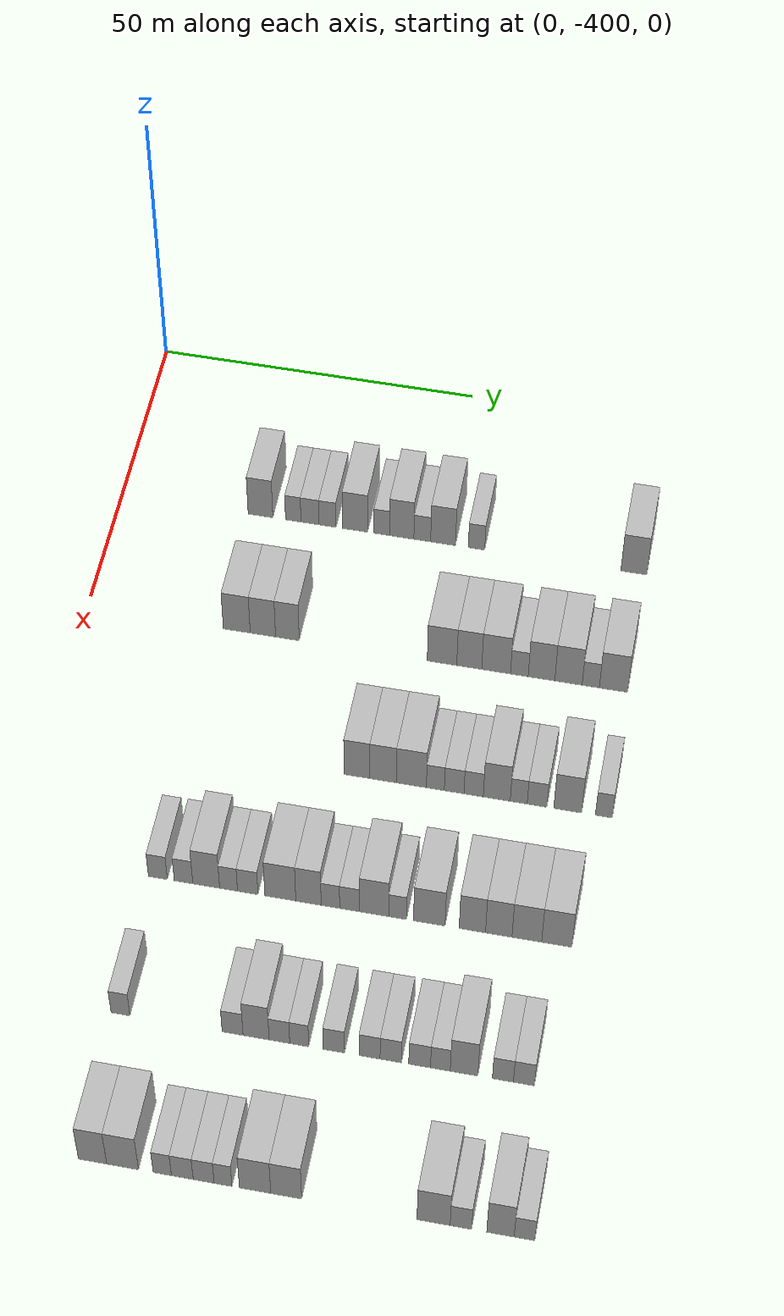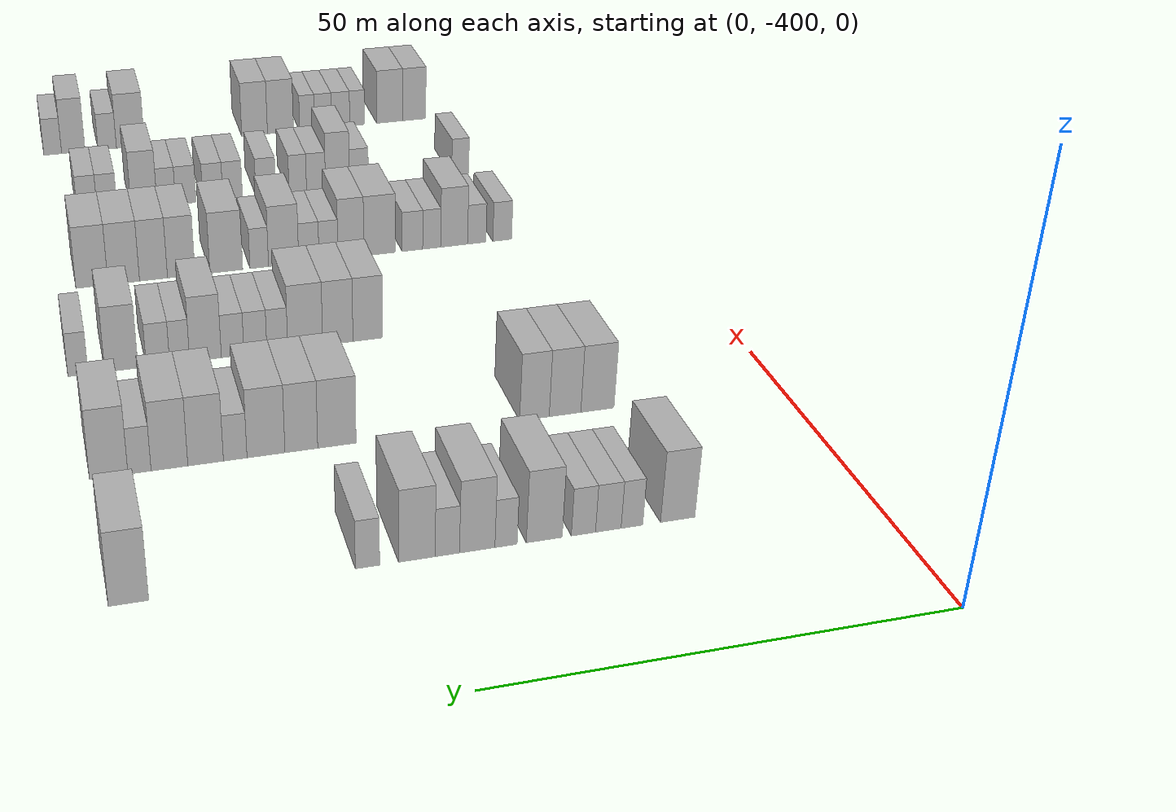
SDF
<sdf version="1.6">
 <world name="default">
  <model name="building_1">
   <static>1</static>
   <pose>25.0000 -378.0573 0 0.000000 0.000000 0.000000</pose>
   <link name="link">
    <pose>0 0 4.50 0 0 0</pose>
    <collision name="collision"><geometry><box><size>10.0000 3.8853 9.0000</size></box></geometry></collision>
    <visual name="visual">
     <cast_shadows>0</cast_shadows>
     <geometry><box><size>10.0000 3.8853 9.0000</size></box></geometry>
     <material>
      <script>
       <uri>model://HANNAS_wall/materials/scripts</uri>
       <uri>model://HANNAS_wall/materials/textures</uri>
       <name>vrc/HANNAS_wall</name>
      </script>
     </material>
    </visual>
   </link>
  </model>
  <model name="building_2">
   <static>1</static>
   <pose>25.0000 -372.9056 0 0.000000 0.000000 0.000000</pose>
   <link name="link">
    <pose>0 0 3.00 0 0 0</pose>
    <collision name="collision"><geometry><box><size>10.0000 2.4181 6.0000</size></box></geometry></collision>
    <visual name="visual">
     <cast_shadows>0</cast_shadows>
     <geometry><box><size>10.0000 2.4181 6.0000</size></box></geometry>
     <material>
      <script>
       <uri>model://HANNAS_wall/materials/scripts</uri>
       <uri>model://HANNAS_wall/materials/textures</uri>
       <name>vrc/HANNAS_wall</name>
      </script>
     </material>
    </visual>
   </link>
  </model>
  <model name="building_3">
   <static>1</static>
   <pose>25.0000 -370.2741 0 0.000000 0.000000 0.000000</pose>
   <link name="link">
    <pose>0 0 3.00 0 0 0</pose>
    <collision name="collision"><geometry><box><size>10.0000 2.8448 6.0000</size></box></geometry></collision>
    <visual name="visual">
     <cast_shadows>0</cast_shadows>
     <geometry><box><size>10.0000 2.8448 6.0000</size></box></geometry>
     <material>
      <script>
       <uri>model://HANNAS_wall/materials/scripts</uri>
       <uri>model://HANNAS_wall/materials/textures</uri>
       <name>vrc/HANNAS_wall</name>
      </script>
     </material>
    </visual>
   </link>
  </model>
  <model name="building_4">
   <static>1</static>
   <pose>25.0000 -367.5150 0 0.000000 0.000000 0.000000</pose>
   <link name="link">
    <pose>0 0 3.00 0 0 0</pose>
    <collision name="collision"><geometry><box><size>10.0000 2.6735 6.0000</size></box></geometry></collision>
    <visual name="visual">
     <cast_shadows>0</cast_shadows>
     <geometry><box><size>10.0000 2.6735 6.0000</size></box></geometry>
     <material>
      <script>
       <uri>model://HANNAS_wall/materials/scripts</uri>
       <uri>model://HANNAS_wall/materials/textures</uri>
       <name>vrc/HANNAS_wall</name>
      </script>
     </material>
    </visual>
   </link>
  </model>
  <model name="building_5">
   <static>1</static>
   <pose>25.0000 -363.2117 0 0.000000 0.000000 0.000000</pose>
   <link name="link">
    <pose>0 0 4.50 0 0 0</pose>
    <collision name="collision"><geometry><box><size>10.0000 3.9331 9.0000</size></box></geometry></collision>
    <visual name="visual">
     <cast_shadows>0</cast_shadows>
     <geometry><box><size>10.0000 3.9331 9.0000</size></box></geometry>
     <material>
      <script>
       <uri>model://HANNAS_wall/materials/scripts</uri>
       <uri>model://HANNAS_wall/materials/textures</uri>
       <name>vrc/HANNAS_wall</name>
      </script>
     </material>
    </visual>
   </link>
  </model>
  <model name="building_6">
   <static>1</static>
   <pose>25.0000 -359.0415 0 0.000000 0.000000 0.000000</pose>
   <link name="link">
    <pose>0 0 3.00 0 0 0</pose>
    <collision name="collision"><geometry><box><size>10.0000 2.4074 6.0000</size></box></geometry></collision>
    <visual name="visual">
     <cast_shadows>0</cast_shadows>
     <geometry><box><size>10.0000 2.4074 6.0000</size></box></geometry>
     <material>
      <script>
       <uri>model://HANNAS_wall/materials/scripts</uri>
       <uri>model://HANNAS_wall/materials/textures</uri>
       <name>vrc/HANNAS_wall</name>
      </script>
     </material>
    </visual>
   </link>
  </model>
  <model name="building_7">
   <static>1</static>
   <pose>25.0000 -355.9314 0 0.000000 0.000000 0.000000</pose>
   <link name="link">
    <pose>0 0 4.50 0 0 0</pose>
    <collision name="collision"><geometry><box><size>10.0000 3.8129 9.0000</size></box></geometry></collision>
    <visual name="visual">
     <cast_shadows>0</cast_shadows>
     <geometry><box><size>10.0000 3.8129 9.0000</size></box></geometry>
     <material>
      <script>
       <uri>model://HANNAS_wall/materials/scripts</uri>
       <uri>model://HANNAS_wall/materials/textures</uri>
       <name>vrc/HANNAS_wall</name>
      </script>
     </material>
    </visual>
   </link>
  </model>
  <model name="building_8">
   <static>1</static>
   <pose>25.0000 -352.7225 0 0.000000 0.000000 0.000000</pose>
   <link name="link">
    <pose>0 0 3.00 0 0 0</pose>
    <collision name="collision"><geometry><box><size>10.0000 2.6049 6.0000</size></box></geometry></collision>
    <visual name="visual">
     <cast_shadows>0</cast_shadows>
     <geometry><box><size>10.0000 2.6049 6.0000</size></box></geometry>
     <material>
      <script>
       <uri>model://HANNAS_wall/materials/scripts</uri>
       <uri>model://HANNAS_wall/materials/textures</uri>
       <name>vrc/HANNAS_wall</name>
      </script>
     </material>
    </visual>
   </link>
  </model>
  <model name="building_9">
   <static>1</static>
   <pose>25.0000 -349.4914 0 0.000000 0.000000 0.000000</pose>
   <link name="link">
    <pose>0 0 4.50 0 0 0</pose>
    <collision name="collision"><geometry><box><size>10.0000 3.8573 9.0000</size></box></geometry></collision>
    <visual name="visual">
     <cast_shadows>0</cast_shadows>
     <geometry><box><size>10.0000 3.8573 9.0000</size></box></geometry>
     <material>
      <script>
       <uri>model://HANNAS_wall/materials/scripts</uri>
       <uri>model://HANNAS_wall/materials/textures</uri>
       <name>vrc/HANNAS_wall</name>
      </script>
     </material>
    </visual>
   </link>
  </model>
  <model name="building_10">
   <static>1</static>
   <pose>25.0000 -344.2924 0 0.000000 0.000000 0.000000</pose>
   <link name="link">
    <pose>0 0 3.00 0 0 0</pose>
    <collision name="collision"><geometry><box><size>10.0000 2.5409 6.0000</size></box></geometry></collision>
    <visual name="visual">
     <cast_shadows>0</cast_shadows>
     <geometry><box><size>10.0000 2.5409 6.0000</size></box></geometry>
     <material>
      <script>
       <uri>model://HANNAS_wall/materials/scripts</uri>
       <uri>model://HANNAS_wall/materials/textures</uri>
       <name>vrc/HANNAS_wall</name>
      </script>
     </material>
    </visual>
   </link>
  </model>
  <model name="building_11">
   <static>1</static>
   <pose>25.0000 -320.0468 0 0.000000 0.000000 0.000000</pose>
   <link name="link">
    <pose>0 0 4.50 0 0 0</pose>
    <collision name="collision"><geometry><box><size>10.0000 3.9834 9.0000</size></box></geometry></collision>
    <visual name="visual">
     <cast_shadows>0</cast_shadows>
     <geometry><box><size>10.0000 3.9834 9.0000</size></box></geometry>
     <material>
      <script>
       <uri>model://HANNAS_wall/materials/scripts</uri>
       <uri>model://HANNAS_wall/materials/textures</uri>
       <name>vrc/HANNAS_wall</name>
      </script>
     </material>
    </visual>
   </link>
  </model>
  <model name="building_188">
   <static>1</static>
   <pose>47.0000 -376.9475 0 0.000000 0.000000 0.000000</pose>
   <link name="link">
    <pose>0 0 4.50 0 0 0</pose>
    <collision name="collision"><geometry><box><size>10.0000 4.1049 9.0000</size></box></geometry></collision>
    <visual name="visual">
     <cast_shadows>0</cast_shadows>
     <geometry><box><size>10.0000 4.1049 9.0000</size></box></geometry>
     <material>
      <script>
       <uri>model://HANNAS_wall/materials/scripts</uri>
       <uri>model://HANNAS_wall/materials/textures</uri>
       <name>vrc/HANNAS_wall</name>
      </script>
     </material>
    </visual>
   </link>
  </model>
  <model name="building_189">
   <static>1</static>
   <pose>47.0000 -372.9577 0 0.000000 0.000000 0.000000</pose>
   <link name="link">
    <pose>0 0 4.50 0 0 0</pose>
    <collision name="collision"><geometry><box><size>10.0000 3.8748 9.0000</size></box></geometry></collision>
    <visual name="visual">
     <cast_shadows>0</cast_shadows>
     <geometry><box><size>10.0000 3.8748 9.0000</size></box></geometry>
     <material>
      <script>
       <uri>model://HANNAS_wall/materials/scripts</uri>
       <uri>model://HANNAS_wall/materials/textures</uri>
       <name>vrc/HANNAS_wall</name>
      </script>
     </material>
    </visual>
   </link>
  </model>
  <model name="building_190">
   <static>1</static>
   <pose>47.0000 -369.2135 0 0.000000 0.000000 0.000000</pose>
   <link name="link">
    <pose>0 0 4.50 0 0 0</pose>
    <collision name="collision"><geometry><box><size>10.0000 3.6135 9.0000</size></box></geometry></collision>
    <visual name="visual">
     <cast_shadows>0</cast_shadows>
     <geometry><box><size>10.0000 3.6135 9.0000</size></box></geometry>
     <material>
      <script>
       <uri>model://HANNAS_wall/materials/scripts</uri>
       <uri>model://HANNAS_wall/materials/textures</uri>
       <name>vrc/HANNAS_wall</name>
      </script>
     </material>
    </visual>
   </link>
  </model>
  <model name="building_191">
   <static>1</static>
   <pose>47.0000 -345.7485 0 0.000000 0.000000 0.000000</pose>
   <link name="link">
    <pose>0 0 4.50 0 0 0</pose>
    <collision name="collision"><geometry><box><size>10.0000 4.4389 9.0000</size></box></geometry></collision>
    <visual name="visual">
     <cast_shadows>0</cast_shadows>
     <geometry><box><size>10.0000 4.4389 9.0000</size></box></geometry>
     <material>
      <script>
       <uri>model://HANNAS_wall/materials/scripts</uri>
       <uri>model://HANNAS_wall/materials/textures</uri>
       <name>vrc/HANNAS_wall</name>
      </script>
     </material>
    </visual>
   </link>
  </model>
  <model name="building_192">
   <static>1</static>
   <pose>47.0000 -341.6483 0 0.000000 0.000000 0.000000</pose>
   <link name="link">
    <pose>0 0 4.50 0 0 0</pose>
    <collision name="collision"><geometry><box><size>10.0000 3.7616 9.0000</size></box></geometry></collision>
    <visual name="visual">
     <cast_shadows>0</cast_shadows>
     <geometry><box><size>10.0000 3.7616 9.0000</size></box></geometry>
     <material>
      <script>
       <uri>model://HANNAS_wall/materials/scripts</uri>
       <uri>model://HANNAS_wall/materials/textures</uri>
       <name>vrc/HANNAS_wall</name>
      </script>
     </material>
    </visual>
   </link>
  </model>
  <model name="building_193">
   <static>1</static>
   <pose>47.0000 -337.6087 0 0.000000 0.000000 0.000000</pose>
   <link name="link">
    <pose>0 0 4.50 0 0 0</pose>
    <collision name="collision"><geometry><box><size>10.0000 4.3175 9.0000</size></box></geometry></collision>
    <visual name="visual">
     <cast_shadows>0</cast_shadows>
     <geometry><box><size>10.0000 4.3175 9.0000</size></box></geometry>
     <material>
      <script>
       <uri>model://HANNAS_wall/materials/scripts</uri>
       <uri>model://HANNAS_wall/materials/textures</uri>
       <name>vrc/HANNAS_wall</name>
      </script>
     </material>
    </visual>
   </link>
  </model>
  <model name="building_194">
   <static>1</static>
   <pose>47.0000 -334.1205 0 0.000000 0.000000 0.000000</pose>
   <link name="link">
    <pose>0 0 3.00 0 0 0</pose>
    <collision name="collision"><geometry><box><size>10.0000 2.6589 6.0000</size></box></geometry></collision>
    <visual name="visual">
     <cast_shadows>0</cast_shadows>
     <geometry><box><size>10.0000 2.6589 6.0000</size></box></geometry>
     <material>
      <script>
       <uri>model://HANNAS_wall/materials/scripts</uri>
       <uri>model://HANNAS_wall/materials/textures</uri>
       <name>vrc/HANNAS_wall</name>
      </script>
     </material>
    </visual>
   </link>
  </model>
  <model name="building_195">
   <static>1</static>
   <pose>47.0000 -330.7967 0 0.000000 0.000000 0.000000</pose>
   <link name="link">
    <pose>0 0 4.50 0 0 0</pose>
    <collision name="collision"><geometry><box><size>10.0000 3.9887 9.0000</size></box></geometry></collision>
    <visual name="visual">
     <cast_shadows>0</cast_shadows>
     <geometry><box><size>10.0000 3.9887 9.0000</size></box></geometry>
     <material>
      <script>
       <uri>model://HANNAS_wall/materials/scripts</uri>
       <uri>model://HANNAS_wall/materials/textures</uri>
       <name>vrc/HANNAS_wall</name>
      </script>
     </material>
    </visual>
   </link>
  </model>
  <model name="building_196">
   <static>1</static>
   <pose>47.0000 -326.7603 0 0.000000 0.000000 0.000000</pose>
   <link name="link">
    <pose>0 0 4.50 0 0 0</pose>
    <collision name="collision"><geometry><box><size>10.0000 4.0842 9.0000</size></box></geometry></collision>
    <visual name="visual">
     <cast_shadows>0</cast_shadows>
     <geometry><box><size>10.0000 4.0842 9.0000</size></box></geometry>
     <material>
      <script>
       <uri>model://HANNAS_wall/materials/scripts</uri>
       <uri>model://HANNAS_wall/materials/textures</uri>
       <name>vrc/HANNAS_wall</name>
      </script>
     </material>
    </visual>
   </link>
  </model>
  <model name="building_197">
   <static>1</static>
   <pose>47.0000 -323.4398 0 0.000000 0.000000 0.000000</pose>
   <link name="link">
    <pose>0 0 3.00 0 0 0</pose>
    <collision name="collision"><geometry><box><size>10.0000 2.5567 6.0000</size></box></geometry></collision>
    <visual name="visual">
     <cast_shadows>0</cast_shadows>
     <geometry><box><size>10.0000 2.5567 6.0000</size></box></geometry>
     <material>
      <script>
       <uri>model://HANNAS_wall/materials/scripts</uri>
       <uri>model://HANNAS_wall/materials/textures</uri>
       <name>vrc/HANNAS_wall</name>
      </script>
     </material>
    </visual>
   </link>
  </model>
  <model name="building_198">
   <static>1</static>
   <pose>47.0000 -320.0561 0 0.000000 0.000000 0.000000</pose>
   <link name="link">
    <pose>0 0 4.50 0 0 0</pose>
    <collision name="collision"><geometry><box><size>10.0000 4.2107 9.0000</size></box></geometry></collision>
    <visual name="visual">
     <cast_shadows>0</cast_shadows>
     <geometry><box><size>10.0000 4.2107 9.0000</size></box></geometry>
     <material>
      <script>
       <uri>model://HANNAS_wall/materials/scripts</uri>
       <uri>model://HANNAS_wall/materials/textures</uri>
       <name>vrc/HANNAS_wall</name>
      </script>
     </material>
    </visual>
   </link>
  </model>
  <model name="building_372">
   <static>1</static>
   <pose>69.0000 -354.3222 0 0.000000 0.000000 0.000000</pose>
   <link name="link">
    <pose>0 0 4.50 0 0 0</pose>
    <collision name="collision"><geometry><box><size>10.0000 3.7852 9.0000</size></box></geometry></collision>
    <visual name="visual">
     <cast_shadows>0</cast_shadows>
     <geometry><box><size>10.0000 3.7852 9.0000</size></box></geometry>
     <material>
      <script>
       <uri>model://HANNAS_wall/materials/scripts</uri>
       <uri>model://HANNAS_wall/materials/textures</uri>
       <name>vrc/HANNAS_wall</name>
      </script>
     </material>
    </visual>
   </link>
  </model>
  <model name="building_373">
   <static>1</static>
   <pose>69.0000 -350.4927 0 0.000000 0.000000 0.000000</pose>
   <link name="link">
    <pose>0 0 4.50 0 0 0</pose>
    <collision name="collision"><geometry><box><size>10.0000 3.8737 9.0000</size></box></geometry></collision>
    <visual name="visual">
     <cast_shadows>0</cast_shadows>
     <geometry><box><size>10.0000 3.8737 9.0000</size></box></geometry>
     <material>
      <script>
       <uri>model://HANNAS_wall/materials/scripts</uri>
       <uri>model://HANNAS_wall/materials/textures</uri>
       <name>vrc/HANNAS_wall</name>
      </script>
     </material>
    </visual>
   </link>
  </model>
  <model name="building_374">
   <static>1</static>
   <pose>69.0000 -346.3451 0 0.000000 0.000000 0.000000</pose>
   <link name="link">
    <pose>0 0 4.50 0 0 0</pose>
    <collision name="collision"><geometry><box><size>10.0000 4.4214 9.0000</size></box></geometry></collision>
    <visual name="visual">
     <cast_shadows>0</cast_shadows>
     <geometry><box><size>10.0000 4.4214 9.0000</size></box></geometry>
     <material>
      <script>
       <uri>model://HANNAS_wall/materials/scripts</uri>
       <uri>model://HANNAS_wall/materials/textures</uri>
       <name>vrc/HANNAS_wall</name>
      </script>
     </material>
    </visual>
   </link>
  </model>
  <model name="building_375">
   <static>1</static>
   <pose>69.0000 -342.8217 0 0.000000 0.000000 0.000000</pose>
   <link name="link">
    <pose>0 0 3.00 0 0 0</pose>
    <collision name="collision"><geometry><box><size>10.0000 2.6254 6.0000</size></box></geometry></collision>
    <visual name="visual">
     <cast_shadows>0</cast_shadows>
     <geometry><box><size>10.0000 2.6254 6.0000</size></box></geometry>
     <material>
      <script>
       <uri>model://HANNAS_wall/materials/scripts</uri>
       <uri>model://HANNAS_wall/materials/textures</uri>
       <name>vrc/HANNAS_wall</name>
      </script>
     </material>
    </visual>
   </link>
  </model>
  <model name="building_376">
   <static>1</static>
   <pose>69.0000 -340.0727 0 0.000000 0.000000 0.000000</pose>
   <link name="link">
    <pose>0 0 3.00 0 0 0</pose>
    <collision name="collision"><geometry><box><size>10.0000 2.8726 6.0000</size></box></geometry></collision>
    <visual name="visual">
     <cast_shadows>0</cast_shadows>
     <geometry><box><size>10.0000 2.8726 6.0000</size></box></geometry>
     <material>
      <script>
       <uri>model://HANNAS_wall/materials/scripts</uri>
       <uri>model://HANNAS_wall/materials/textures</uri>
       <name>vrc/HANNAS_wall</name>
      </script>
     </material>
    </visual>
   </link>
  </model>
  <model name="building_377">
   <static>1</static>
   <pose>69.0000 -337.2269 0 0.000000 0.000000 0.000000</pose>
   <link name="link">
    <pose>0 0 3.00 0 0 0</pose>
    <collision name="collision"><geometry><box><size>10.0000 2.8191 6.0000</size></box></geometry></collision>
    <visual name="visual">
     <cast_shadows>0</cast_shadows>
     <geometry><box><size>10.0000 2.8191 6.0000</size></box></geometry>
     <material>
      <script>
       <uri>model://HANNAS_wall/materials/scripts</uri>
       <uri>model://HANNAS_wall/materials/textures</uri>
       <name>vrc/HANNAS_wall</name>
      </script>
     </material>
    </visual>
   </link>
  </model>
  <model name="building_378">
   <static>1</static>
   <pose>69.0000 -333.8551 0 0.000000 0.000000 0.000000</pose>
   <link name="link">
    <pose>0 0 4.50 0 0 0</pose>
    <collision name="collision"><geometry><box><size>10.0000 3.9245 9.0000</size></box></geometry></collision>
    <visual name="visual">
     <cast_shadows>0</cast_shadows>
     <geometry><box><size>10.0000 3.9245 9.0000</size></box></geometry>
     <material>
      <script>
       <uri>model://HANNAS_wall/materials/scripts</uri>
       <uri>model://HANNAS_wall/materials/textures</uri>
       <name>vrc/HANNAS_wall</name>
      </script>
     </material>
    </visual>
   </link>
  </model>
  <model name="building_379">
   <static>1</static>
   <pose>69.0000 -330.6616 0 0.000000 0.000000 0.000000</pose>
   <link name="link">
    <pose>0 0 3.00 0 0 0</pose>
    <collision name="collision"><geometry><box><size>10.0000 2.4625 6.0000</size></box></geometry></collision>
    <visual name="visual">
     <cast_shadows>0</cast_shadows>
     <geometry><box><size>10.0000 2.4625 6.0000</size></box></geometry>
     <material>
      <script>
       <uri>model://HANNAS_wall/materials/scripts</uri>
       <uri>model://HANNAS_wall/materials/textures</uri>
       <name>vrc/HANNAS_wall</name>
      </script>
     </material>
    </visual>
   </link>
  </model>
  <model name="building_380">
   <static>1</static>
   <pose>69.0000 -327.9984 0 0.000000 0.000000 0.000000</pose>
   <link name="link">
    <pose>0 0 3.00 0 0 0</pose>
    <collision name="collision"><geometry><box><size>10.0000 2.8639 6.0000</size></box></geometry></collision>
    <visual name="visual">
     <cast_shadows>0</cast_shadows>
     <geometry><box><size>10.0000 2.8639 6.0000</size></box></geometry>
     <material>
      <script>
       <uri>model://HANNAS_wall/materials/scripts</uri>
       <uri>model://HANNAS_wall/materials/textures</uri>
       <name>vrc/HANNAS_wall</name>
      </script>
     </material>
    </visual>
   </link>
  </model>
  <model name="building_381">
   <static>1</static>
   <pose>69.0000 -323.5484 0 0.000000 0.000000 0.000000</pose>
   <link name="link">
    <pose>0 0 4.50 0 0 0</pose>
    <collision name="collision"><geometry><box><size>10.0000 4.0362 9.0000</size></box></geometry></collision>
    <visual name="visual">
     <cast_shadows>0</cast_shadows>
     <geometry><box><size>10.0000 4.0362 9.0000</size></box></geometry>
     <material>
      <script>
       <uri>model://HANNAS_wall/materials/scripts</uri>
       <uri>model://HANNAS_wall/materials/textures</uri>
       <name>vrc/HANNAS_wall</name>
      </script>
     </material>
    </visual>
   </link>
  </model>
  <model name="building_382">
   <static>1</static>
   <pose>69.0000 -318.3145 0 0.000000 0.000000 0.000000</pose>
   <link name="link">
    <pose>0 0 3.00 0 0 0</pose>
    <collision name="collision"><geometry><box><size>10.0000 2.4315 6.0000</size></box></geometry></collision>
    <visual name="visual">
     <cast_shadows>0</cast_shadows>
     <geometry><box><size>10.0000 2.4315 6.0000</size></box></geometry>
     <material>
      <script>
       <uri>model://HANNAS_wall/materials/scripts</uri>
       <uri>model://HANNAS_wall/materials/textures</uri>
       <name>vrc/HANNAS_wall</name>
      </script>
     </material>
    </visual>
   </link>
  </model>
  <model name="building_554">
   <static>1</static>
   <pose>91.0000 -378.6354 0 0.000000 0.000000 0.000000</pose>
   <link name="link">
    <pose>0 0 3.00 0 0 0</pose>
    <collision name="collision"><geometry><box><size>10.0000 2.7293 6.0000</size></box></geometry></collision>
    <visual name="visual">
     <cast_shadows>0</cast_shadows>
     <geometry><box><size>10.0000 2.7293 6.0000</size></box></geometry>
     <material>
      <script>
       <uri>model://HANNAS_wall/materials/scripts</uri>
       <uri>model://HANNAS_wall/materials/textures</uri>
       <name>vrc/HANNAS_wall</name>
      </script>
     </material>
    </visual>
   </link>
  </model>
  <model name="building_555">
   <static>1</static>
   <pose>91.0000 -374.9314 0 0.000000 0.000000 0.000000</pose>
   <link name="link">
    <pose>0 0 3.00 0 0 0</pose>
    <collision name="collision"><geometry><box><size>10.0000 2.6787 6.0000</size></box></geometry></collision>
    <visual name="visual">
     <cast_shadows>0</cast_shadows>
     <geometry><box><size>10.0000 2.6787 6.0000</size></box></geometry>
     <material>
      <script>
       <uri>model://HANNAS_wall/materials/scripts</uri>
       <uri>model://HANNAS_wall/materials/textures</uri>
       <name>vrc/HANNAS_wall</name>
      </script>
     </material>
    </visual>
   </link>
  </model>
  <model name="building_556">
   <static>1</static>
   <pose>91.0000 -371.6540 0 0.000000 0.000000 0.000000</pose>
   <link name="link">
    <pose>0 0 4.50 0 0 0</pose>
    <collision name="collision"><geometry><box><size>10.0000 3.8761 9.0000</size></box></geometry></collision>
    <visual name="visual">
     <cast_shadows>0</cast_shadows>
     <geometry><box><size>10.0000 3.8761 9.0000</size></box></geometry>
     <material>
      <script>
       <uri>model://HANNAS_wall/materials/scripts</uri>
       <uri>model://HANNAS_wall/materials/textures</uri>
       <name>vrc/HANNAS_wall</name>
      </script>
     </material>
    </visual>
   </link>
  </model>
  <model name="building_557">
   <static>1</static>
   <pose>91.0000 -368.4298 0 0.000000 0.000000 0.000000</pose>
   <link name="link">
    <pose>0 0 3.00 0 0 0</pose>
    <collision name="collision"><geometry><box><size>10.0000 2.5722 6.0000</size></box></geometry></collision>
    <visual name="visual">
     <cast_shadows>0</cast_shadows>
     <geometry><box><size>10.0000 2.5722 6.0000</size></box></geometry>
     <material>
      <script>
       <uri>model://HANNAS_wall/materials/scripts</uri>
       <uri>model://HANNAS_wall/materials/textures</uri>
       <name>vrc/HANNAS_wall</name>
      </script>
     </material>
    </visual>
   </link>
  </model>
  <model name="building_558">
   <static>1</static>
   <pose>91.0000 -365.6731 0 0.000000 0.000000 0.000000</pose>
   <link name="link">
    <pose>0 0 3.00 0 0 0</pose>
    <collision name="collision"><geometry><box><size>10.0000 2.9412 6.0000</size></box></geometry></collision>
    <visual name="visual">
     <cast_shadows>0</cast_shadows>
     <geometry><box><size>10.0000 2.9412 6.0000</size></box></geometry>
     <material>
      <script>
       <uri>model://HANNAS_wall/materials/scripts</uri>
       <uri>model://HANNAS_wall/materials/textures</uri>
       <name>vrc/HANNAS_wall</name>
      </script>
     </material>
    </visual>
   </link>
  </model>
  <model name="building_559">
   <static>1</static>
   <pose>91.0000 -360.9885 0 0.000000 0.000000 0.000000</pose>
   <link name="link">
    <pose>0 0 4.50 0 0 0</pose>
    <collision name="collision"><geometry><box><size>10.0000 4.4280 9.0000</size></box></geometry></collision>
    <visual name="visual">
     <cast_shadows>0</cast_shadows>
     <geometry><box><size>10.0000 4.4280 9.0000</size></box></geometry>
     <material>
      <script>
       <uri>model://HANNAS_wall/materials/scripts</uri>
       <uri>model://HANNAS_wall/materials/textures</uri>
       <name>vrc/HANNAS_wall</name>
      </script>
     </material>
    </visual>
   </link>
  </model>
  <model name="building_560">
   <static>1</static>
   <pose>91.0000 -356.9583 0 0.000000 0.000000 0.000000</pose>
   <link name="link">
    <pose>0 0 4.50 0 0 0</pose>
    <collision name="collision"><geometry><box><size>10.0000 3.6325 9.0000</size></box></geometry></collision>
    <visual name="visual">
     <cast_shadows>0</cast_shadows>
     <geometry><box><size>10.0000 3.6325 9.0000</size></box></geometry>
     <material>
      <script>
       <uri>model://HANNAS_wall/materials/scripts</uri>
       <uri>model://HANNAS_wall/materials/textures</uri>
       <name>vrc/HANNAS_wall</name>
      </script>
     </material>
    </visual>
   </link>
  </model>
  <model name="building_561">
   <static>1</static>
   <pose>91.0000 -353.8223 0 0.000000 0.000000 0.000000</pose>
   <link name="link">
    <pose>0 0 3.00 0 0 0</pose>
    <collision name="collision"><geometry><box><size>10.0000 2.6395 6.0000</size></box></geometry></collision>
    <visual name="visual">
     <cast_shadows>0</cast_shadows>
     <geometry><box><size>10.0000 2.6395 6.0000</size></box></geometry>
     <material>
      <script>
       <uri>model://HANNAS_wall/materials/scripts</uri>
       <uri>model://HANNAS_wall/materials/textures</uri>
       <name>vrc/HANNAS_wall</name>
      </script>
     </material>
    </visual>
   </link>
  </model>
  <model name="building_562">
   <static>1</static>
   <pose>91.0000 -351.0968 0 0.000000 0.000000 0.000000</pose>
   <link name="link">
    <pose>0 0 3.00 0 0 0</pose>
    <collision name="collision"><geometry><box><size>10.0000 2.8115 6.0000</size></box></geometry></collision>
    <visual name="visual">
     <cast_shadows>0</cast_shadows>
     <geometry><box><size>10.0000 2.8115 6.0000</size></box></geometry>
     <material>
      <script>
       <uri>model://HANNAS_wall/materials/scripts</uri>
       <uri>model://HANNAS_wall/materials/textures</uri>
       <name>vrc/HANNAS_wall</name>
      </script>
     </material>
    </visual>
   </link>
  </model>
  <model name="building_563">
   <static>1</static>
   <pose>91.0000 -347.6056 0 0.000000 0.000000 0.000000</pose>
   <link name="link">
    <pose>0 0 4.50 0 0 0</pose>
    <collision name="collision"><geometry><box><size>10.0000 4.1708 9.0000</size></box></geometry></collision>
    <visual name="visual">
     <cast_shadows>0</cast_shadows>
     <geometry><box><size>10.0000 4.1708 9.0000</size></box></geometry>
     <material>
      <script>
       <uri>model://HANNAS_wall/materials/scripts</uri>
       <uri>model://HANNAS_wall/materials/textures</uri>
       <name>vrc/HANNAS_wall</name>
      </script>
     </material>
    </visual>
   </link>
  </model>
  <model name="building_564">
   <static>1</static>
   <pose>91.0000 -344.2481 0 0.000000 0.000000 0.000000</pose>
   <link name="link">
    <pose>0 0 3.00 0 0 0</pose>
    <collision name="collision"><geometry><box><size>10.0000 2.5442 6.0000</size></box></geometry></collision>
    <visual name="visual">
     <cast_shadows>0</cast_shadows>
     <geometry><box><size>10.0000 2.5442 6.0000</size></box></geometry>
     <material>
      <script>
       <uri>model://HANNAS_wall/materials/scripts</uri>
       <uri>model://HANNAS_wall/materials/textures</uri>
       <name>vrc/HANNAS_wall</name>
      </script>
     </material>
    </visual>
   </link>
  </model>
  <model name="building_565">
   <static>1</static>
   <pose>91.0000 -339.7418 0 0.000000 0.000000 0.000000</pose>
   <link name="link">
    <pose>0 0 4.50 0 0 0</pose>
    <collision name="collision"><geometry><box><size>10.0000 4.4684 9.0000</size></box></geometry></collision>
    <visual name="visual">
     <cast_shadows>0</cast_shadows>
     <geometry><box><size>10.0000 4.4684 9.0000</size></box></geometry>
     <material>
      <script>
       <uri>model://HANNAS_wall/materials/scripts</uri>
       <uri>model://HANNAS_wall/materials/textures</uri>
       <name>vrc/HANNAS_wall</name>
      </script>
     </material>
    </visual>
   </link>
  </model>
  <model name="building_566">
   <static>1</static>
   <pose>91.0000 -333.6488 0 0.000000 0.000000 0.000000</pose>
   <link name="link">
    <pose>0 0 4.50 0 0 0</pose>
    <collision name="collision"><geometry><box><size>10.0000 3.7176 9.0000</size></box></geometry></collision>
    <visual name="visual">
     <cast_shadows>0</cast_shadows>
     <geometry><box><size>10.0000 3.7176 9.0000</size></box></geometry>
     <material>
      <script>
       <uri>model://HANNAS_wall/materials/scripts</uri>
       <uri>model://HANNAS_wall/materials/textures</uri>
       <name>vrc/HANNAS_wall</name>
      </script>
     </material>
    </visual>
   </link>
  </model>
  <model name="building_567">
   <static>1</static>
   <pose>91.0000 -329.9222 0 0.000000 0.000000 0.000000</pose>
   <link name="link">
    <pose>0 0 4.50 0 0 0</pose>
    <collision name="collision"><geometry><box><size>10.0000 3.7356 9.0000</size></box></geometry></collision>
    <visual name="visual">
     <cast_shadows>0</cast_shadows>
     <geometry><box><size>10.0000 3.7356 9.0000</size></box></geometry>
     <material>
      <script>
       <uri>model://HANNAS_wall/materials/scripts</uri>
       <uri>model://HANNAS_wall/materials/textures</uri>
       <name>vrc/HANNAS_wall</name>
      </script>
     </material>
    </visual>
   </link>
  </model>
  <model name="building_568">
   <static>1</static>
   <pose>91.0000 -325.9658 0 0.000000 0.000000 0.000000</pose>
   <link name="link">
    <pose>0 0 4.50 0 0 0</pose>
    <collision name="collision"><geometry><box><size>10.0000 4.1771 9.0000</size></box></geometry></collision>
    <visual name="visual">
     <cast_shadows>0</cast_shadows>
     <geometry><box><size>10.0000 4.1771 9.0000</size></box></geometry>
     <material>
      <script>
       <uri>model://HANNAS_wall/materials/scripts</uri>
       <uri>model://HANNAS_wall/materials/textures</uri>
       <name>vrc/HANNAS_wall</name>
      </script>
     </material>
    </visual>
   </link>
  </model>
  <model name="building_569">
   <static>1</static>
   <pose>91.0000 -321.7528 0 0.000000 0.000000 0.000000</pose>
   <link name="link">
    <pose>0 0 4.50 0 0 0</pose>
    <collision name="collision"><geometry><box><size>10.0000 4.2489 9.0000</size></box></geometry></collision>
    <visual name="visual">
     <cast_shadows>0</cast_shadows>
     <geometry><box><size>10.0000 4.2489 9.0000</size></box></geometry>
     <material>
      <script>
       <uri>model://HANNAS_wall/materials/scripts</uri>
       <uri>model://HANNAS_wall/materials/textures</uri>
       <name>vrc/HANNAS_wall</name>
      </script>
     </material>
    </visual>
   </link>
  </model>
  <model name="building_743">
   <static>1</static>
   <pose>113.0000 -378.6723 0 0.000000 0.000000 0.000000</pose>
   <link name="link">
    <pose>0 0 3.00 0 0 0</pose>
    <collision name="collision"><geometry><box><size>10.0000 2.6553 6.0000</size></box></geometry></collision>
    <visual name="visual">
     <cast_shadows>0</cast_shadows>
     <geometry><box><size>10.0000 2.6553 6.0000</size></box></geometry>
     <material>
      <script>
       <uri>model://HANNAS_wall/materials/scripts</uri>
       <uri>model://HANNAS_wall/materials/textures</uri>
       <name>vrc/HANNAS_wall</name>
      </script>
     </material>
    </visual>
   </link>
  </model>
  <model name="building_744">
   <static>1</static>
   <pose>113.0000 -362.9800 0 0.000000 0.000000 0.000000</pose>
   <link name="link">
    <pose>0 0 3.00 0 0 0</pose>
    <collision name="collision"><geometry><box><size>10.0000 2.9098 6.0000</size></box></geometry></collision>
    <visual name="visual">
     <cast_shadows>0</cast_shadows>
     <geometry><box><size>10.0000 2.9098 6.0000</size></box></geometry>
     <material>
      <script>
       <uri>model://HANNAS_wall/materials/scripts</uri>
       <uri>model://HANNAS_wall/materials/textures</uri>
       <name>vrc/HANNAS_wall</name>
      </script>
     </material>
    </visual>
   </link>
  </model>
  <model name="building_745">
   <static>1</static>
   <pose>113.0000 -359.7161 0 0.000000 0.000000 0.000000</pose>
   <link name="link">
    <pose>0 0 4.50 0 0 0</pose>
    <collision name="collision"><geometry><box><size>10.0000 3.6180 9.0000</size></box></geometry></collision>
    <visual name="visual">
     <cast_shadows>0</cast_shadows>
     <geometry><box><size>10.0000 3.6180 9.0000</size></box></geometry>
     <material>
      <script>
       <uri>model://HANNAS_wall/materials/scripts</uri>
       <uri>model://HANNAS_wall/materials/textures</uri>
       <name>vrc/HANNAS_wall</name>
      </script>
     </material>
    </visual>
   </link>
  </model>
  <model name="building_746">
   <static>1</static>
   <pose>113.0000 -356.4725 0 0.000000 0.000000 0.000000</pose>
   <link name="link">
    <pose>0 0 3.00 0 0 0</pose>
    <collision name="collision"><geometry><box><size>10.0000 2.8691 6.0000</size></box></geometry></collision>
    <visual name="visual">
     <cast_shadows>0</cast_shadows>
     <geometry><box><size>10.0000 2.8691 6.0000</size></box></geometry>
     <material>
      <script>
       <uri>model://HANNAS_wall/materials/scripts</uri>
       <uri>model://HANNAS_wall/materials/textures</uri>
       <name>vrc/HANNAS_wall</name>
      </script>
     </material>
    </visual>
   </link>
  </model>
  <model name="building_747">
   <static>1</static>
   <pose>113.0000 -353.7219 0 0.000000 0.000000 0.000000</pose>
   <link name="link">
    <pose>0 0 3.00 0 0 0</pose>
    <collision name="collision"><geometry><box><size>10.0000 2.6320 6.0000</size></box></geometry></collision>
    <visual name="visual">
     <cast_shadows>0</cast_shadows>
     <geometry><box><size>10.0000 2.6320 6.0000</size></box></geometry>
     <material>
      <script>
       <uri>model://HANNAS_wall/materials/scripts</uri>
       <uri>model://HANNAS_wall/materials/textures</uri>
       <name>vrc/HANNAS_wall</name>
      </script>
     </material>
    </visual>
   </link>
  </model>
  <model name="building_748">
   <static>1</static>
   <pose>113.0000 -348.9250 0 0.000000 0.000000 0.000000</pose>
   <link name="link">
    <pose>0 0 3.00 0 0 0</pose>
    <collision name="collision"><geometry><box><size>10.0000 2.9620 6.0000</size></box></geometry></collision>
    <visual name="visual">
     <cast_shadows>0</cast_shadows>
     <geometry><box><size>10.0000 2.9620 6.0000</size></box></geometry>
     <material>
      <script>
       <uri>model://HANNAS_wall/materials/scripts</uri>
       <uri>model://HANNAS_wall/materials/textures</uri>
       <name>vrc/HANNAS_wall</name>
      </script>
     </material>
    </visual>
   </link>
  </model>
  <model name="building_749">
   <static>1</static>
   <pose>113.0000 -343.9970 0 0.000000 0.000000 0.000000</pose>
   <link name="link">
    <pose>0 0 3.00 0 0 0</pose>
    <collision name="collision"><geometry><box><size>10.0000 2.8940 6.0000</size></box></geometry></collision>
    <visual name="visual">
     <cast_shadows>0</cast_shadows>
     <geometry><box><size>10.0000 2.8940 6.0000</size></box></geometry>
     <material>
      <script>
       <uri>model://HANNAS_wall/materials/scripts</uri>
       <uri>model://HANNAS_wall/materials/textures</uri>
       <name>vrc/HANNAS_wall</name>
      </script>
     </material>
    </visual>
   </link>
  </model>
  <model name="building_750">
   <static>1</static>
   <pose>113.0000 -341.0769 0 0.000000 0.000000 0.000000</pose>
   <link name="link">
    <pose>0 0 3.00 0 0 0</pose>
    <collision name="collision"><geometry><box><size>10.0000 2.9461 6.0000</size></box></geometry></collision>
    <visual name="visual">
     <cast_shadows>0</cast_shadows>
     <geometry><box><size>10.0000 2.9461 6.0000</size></box></geometry>
     <material>
      <script>
       <uri>model://HANNAS_wall/materials/scripts</uri>
       <uri>model://HANNAS_wall/materials/textures</uri>
       <name>vrc/HANNAS_wall</name>
      </script>
     </material>
    </visual>
   </link>
  </model>
  <model name="building_751">
   <static>1</static>
   <pose>113.0000 -337.1081 0 0.000000 0.000000 0.000000</pose>
   <link name="link">
    <pose>0 0 3.00 0 0 0</pose>
    <collision name="collision"><geometry><box><size>10.0000 2.9914 6.0000</size></box></geometry></collision>
    <visual name="visual">
     <cast_shadows>0</cast_shadows>
     <geometry><box><size>10.0000 2.9914 6.0000</size></box></geometry>
     <material>
      <script>
       <uri>model://HANNAS_wall/materials/scripts</uri>
       <uri>model://HANNAS_wall/materials/textures</uri>
       <name>vrc/HANNAS_wall</name>
      </script>
     </material>
    </visual>
   </link>
  </model>
  <model name="building_752">
   <static>1</static>
   <pose>113.0000 -334.2624 0 0.000000 0.000000 0.000000</pose>
   <link name="link">
    <pose>0 0 3.00 0 0 0</pose>
    <collision name="collision"><geometry><box><size>10.0000 2.7001 6.0000</size></box></geometry></collision>
    <visual name="visual">
     <cast_shadows>0</cast_shadows>
     <geometry><box><size>10.0000 2.7001 6.0000</size></box></geometry>
     <material>
      <script>
       <uri>model://HANNAS_wall/materials/scripts</uri>
       <uri>model://HANNAS_wall/materials/textures</uri>
       <name>vrc/HANNAS_wall</name>
      </script>
     </material>
    </visual>
   </link>
  </model>
  <model name="building_753">
   <static>1</static>
   <pose>113.0000 -331.0248 0 0.000000 0.000000 0.000000</pose>
   <link name="link">
    <pose>0 0 4.50 0 0 0</pose>
    <collision name="collision"><geometry><box><size>10.0000 3.7750 9.0000</size></box></geometry></collision>
    <visual name="visual">
     <cast_shadows>0</cast_shadows>
     <geometry><box><size>10.0000 3.7750 9.0000</size></box></geometry>
     <material>
      <script>
       <uri>model://HANNAS_wall/materials/scripts</uri>
       <uri>model://HANNAS_wall/materials/textures</uri>
       <name>vrc/HANNAS_wall</name>
      </script>
     </material>
    </visual>
   </link>
  </model>
  <model name="building_754">
   <static>1</static>
   <pose>113.0000 -325.7047 0 0.000000 0.000000 0.000000</pose>
   <link name="link">
    <pose>0 0 3.00 0 0 0</pose>
    <collision name="collision"><geometry><box><size>10.0000 2.8652 6.0000</size></box></geometry></collision>
    <visual name="visual">
     <cast_shadows>0</cast_shadows>
     <geometry><box><size>10.0000 2.8652 6.0000</size></box></geometry>
     <material>
      <script>
       <uri>model://HANNAS_wall/materials/scripts</uri>
       <uri>model://HANNAS_wall/materials/textures</uri>
       <name>vrc/HANNAS_wall</name>
      </script>
     </material>
    </visual>
   </link>
  </model>
  <model name="building_755">
   <static>1</static>
   <pose>113.0000 -322.8424 0 0.000000 0.000000 0.000000</pose>
   <link name="link">
    <pose>0 0 3.00 0 0 0</pose>
    <collision name="collision"><geometry><box><size>10.0000 2.8594 6.0000</size></box></geometry></collision>
    <visual name="visual">
     <cast_shadows>0</cast_shadows>
     <geometry><box><size>10.0000 2.8594 6.0000</size></box></geometry>
     <material>
      <script>
       <uri>model://HANNAS_wall/materials/scripts</uri>
       <uri>model://HANNAS_wall/materials/textures</uri>
       <name>vrc/HANNAS_wall</name>
      </script>
     </material>
    </visual>
   </link>
  </model>
  <model name="building_932">
   <static>1</static>
   <pose>135.0000 -377.0785 0 0.000000 0.000000 0.000000</pose>
   <link name="link">
    <pose>0 0 4.50 0 0 0</pose>
    <collision name="collision"><geometry><box><size>10.0000 3.8430 9.0000</size></box></geometry></collision>
    <visual name="visual">
     <cast_shadows>0</cast_shadows>
     <geometry><box><size>10.0000 3.8430 9.0000</size></box></geometry>
     <material>
      <script>
       <uri>model://HANNAS_wall/materials/scripts</uri>
       <uri>model://HANNAS_wall/materials/textures</uri>
       <name>vrc/HANNAS_wall</name>
      </script>
     </material>
    </visual>
   </link>
  </model>
  <model name="building_933">
   <static>1</static>
   <pose>135.0000 -372.9968 0 0.000000 0.000000 0.000000</pose>
   <link name="link">
    <pose>0 0 4.50 0 0 0</pose>
    <collision name="collision"><geometry><box><size>10.0000 4.3205 9.0000</size></box></geometry></collision>
    <visual name="visual">
     <cast_shadows>0</cast_shadows>
     <geometry><box><size>10.0000 4.3205 9.0000</size></box></geometry>
     <material>
      <script>
       <uri>model://HANNAS_wall/materials/scripts</uri>
       <uri>model://HANNAS_wall/materials/textures</uri>
       <name>vrc/HANNAS_wall</name>
      </script>
     </material>
    </visual>
   </link>
  </model>
  <model name="building_934">
   <static>1</static>
   <pose>135.0000 -367.6055 0 0.000000 0.000000 0.000000</pose>
   <link name="link">
    <pose>0 0 3.00 0 0 0</pose>
    <collision name="collision"><geometry><box><size>10.0000 2.4621 6.0000</size></box></geometry></collision>
    <visual name="visual">
     <cast_shadows>0</cast_shadows>
     <geometry><box><size>10.0000 2.4621 6.0000</size></box></geometry>
     <material>
      <script>
       <uri>model://HANNAS_wall/materials/scripts</uri>
       <uri>model://HANNAS_wall/materials/textures</uri>
       <name>vrc/HANNAS_wall</name>
      </script>
     </material>
    </visual>
   </link>
  </model>
  <model name="building_935">
   <static>1</static>
   <pose>135.0000 -364.8990 0 0.000000 0.000000 0.000000</pose>
   <link name="link">
    <pose>0 0 3.00 0 0 0</pose>
    <collision name="collision"><geometry><box><size>10.0000 2.9508 6.0000</size></box></geometry></collision>
    <visual name="visual">
     <cast_shadows>0</cast_shadows>
     <geometry><box><size>10.0000 2.9508 6.0000</size></box></geometry>
     <material>
      <script>
       <uri>model://HANNAS_wall/materials/scripts</uri>
       <uri>model://HANNAS_wall/materials/textures</uri>
       <name>vrc/HANNAS_wall</name>
      </script>
     </material>
    </visual>
   </link>
  </model>
  <model name="building_936">
   <static>1</static>
   <pose>135.0000 -362.0109 0 0.000000 0.000000 0.000000</pose>
   <link name="link">
    <pose>0 0 3.00 0 0 0</pose>
    <collision name="collision"><geometry><box><size>10.0000 2.8255 6.0000</size></box></geometry></collision>
    <visual name="visual">
     <cast_shadows>0</cast_shadows>
     <geometry><box><size>10.0000 2.8255 6.0000</size></box></geometry>
     <material>
      <script>
       <uri>model://HANNAS_wall/materials/scripts</uri>
       <uri>model://HANNAS_wall/materials/textures</uri>
       <name>vrc/HANNAS_wall</name>
      </script>
     </material>
    </visual>
   </link>
  </model>
  <model name="building_937">
   <static>1</static>
   <pose>135.0000 -359.3939 0 0.000000 0.000000 0.000000</pose>
   <link name="link">
    <pose>0 0 3.00 0 0 0</pose>
    <collision name="collision"><geometry><box><size>10.0000 2.4086 6.0000</size></box></geometry></collision>
    <visual name="visual">
     <cast_shadows>0</cast_shadows>
     <geometry><box><size>10.0000 2.4086 6.0000</size></box></geometry>
     <material>
      <script>
       <uri>model://HANNAS_wall/materials/scripts</uri>
       <uri>model://HANNAS_wall/materials/textures</uri>
       <name>vrc/HANNAS_wall</name>
      </script>
     </material>
    </visual>
   </link>
  </model>
  <model name="building_938">
   <static>1</static>
   <pose>135.0000 -355.0815 0 0.000000 0.000000 0.000000</pose>
   <link name="link">
    <pose>0 0 4.50 0 0 0</pose>
    <collision name="collision"><geometry><box><size>10.0000 4.2162 9.0000</size></box></geometry></collision>
    <visual name="visual">
     <cast_shadows>0</cast_shadows>
     <geometry><box><size>10.0000 4.2162 9.0000</size></box></geometry>
     <material>
      <script>
       <uri>model://HANNAS_wall/materials/scripts</uri>
       <uri>model://HANNAS_wall/materials/textures</uri>
       <name>vrc/HANNAS_wall</name>
      </script>
     </material>
    </visual>
   </link>
  </model>
  <model name="building_939">
   <static>1</static>
   <pose>135.0000 -350.9062 0 0.000000 0.000000 0.000000</pose>
   <link name="link">
    <pose>0 0 4.50 0 0 0</pose>
    <collision name="collision"><geometry><box><size>10.0000 4.1343 9.0000</size></box></geometry></collision>
    <visual name="visual">
     <cast_shadows>0</cast_shadows>
     <geometry><box><size>10.0000 4.1343 9.0000</size></box></geometry>
     <material>
      <script>
       <uri>model://HANNAS_wall/materials/scripts</uri>
       <uri>model://HANNAS_wall/materials/textures</uri>
       <name>vrc/HANNAS_wall</name>
      </script>
     </material>
    </visual>
   </link>
  </model>
  <model name="building_940">
   <static>1</static>
   <pose>135.0000 -331.2544 0 0.000000 0.000000 0.000000</pose>
   <link name="link">
    <pose>0 0 4.50 0 0 0</pose>
    <collision name="collision"><geometry><box><size>10.0000 4.3898 9.0000</size></box></geometry></collision>
    <visual name="visual">
     <cast_shadows>0</cast_shadows>
     <geometry><box><size>10.0000 4.3898 9.0000</size></box></geometry>
     <material>
      <script>
       <uri>model://HANNAS_wall/materials/scripts</uri>
       <uri>model://HANNAS_wall/materials/textures</uri>
       <name>vrc/HANNAS_wall</name>
      </script>
     </material>
    </visual>
   </link>
  </model>
  <model name="building_941">
   <static>1</static>
   <pose>135.0000 -327.6356 0 0.000000 0.000000 0.000000</pose>
   <link name="link">
    <pose>0 0 3.00 0 0 0</pose>
    <collision name="collision"><geometry><box><size>10.0000 2.8478 6.0000</size></box></geometry></collision>
    <visual name="visual">
     <cast_shadows>0</cast_shadows>
     <geometry><box><size>10.0000 2.8478 6.0000</size></box></geometry>
     <material>
      <script>
       <uri>model://HANNAS_wall/materials/scripts</uri>
       <uri>model://HANNAS_wall/materials/textures</uri>
       <name>vrc/HANNAS_wall</name>
      </script>
     </material>
    </visual>
   </link>
  </model>
  <model name="building_942">
   <static>1</static>
   <pose>135.0000 -322.4058 0 0.000000 0.000000 0.000000</pose>
   <link name="link">
    <pose>0 0 4.50 0 0 0</pose>
    <collision name="collision"><geometry><box><size>10.0000 3.6119 9.0000</size></box></geometry></collision>
    <visual name="visual">
     <cast_shadows>0</cast_shadows>
     <geometry><box><size>10.0000 3.6119 9.0000</size></box></geometry>
     <material>
      <script>
       <uri>model://HANNAS_wall/materials/scripts</uri>
       <uri>model://HANNAS_wall/materials/textures</uri>
       <name>vrc/HANNAS_wall</name>
      </script>
     </material>
    </visual>
   </link>
  </model>
  <model name="building_943">
   <static>1</static>
   <pose>135.0000 -319.2420 0 0.000000 0.000000 0.000000</pose>
   <link name="link">
    <pose>0 0 3.00 0 0 0</pose>
    <collision name="collision"><geometry><box><size>10.0000 2.7155 6.0000</size></box></geometry></collision>
    <visual name="visual">
     <cast_shadows>0</cast_shadows>
     <geometry><box><size>10.0000 2.7155 6.0000</size></box></geometry>
     <material>
      <script>
       <uri>model://HANNAS_wall/materials/scripts</uri>
       <uri>model://HANNAS_wall/materials/textures</uri>
       <name>vrc/HANNAS_wall</name>
      </script>
     </material>
    </visual>
   </link>
  </model>
 </world>
</sdf>
